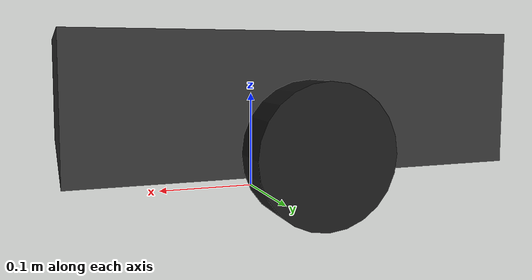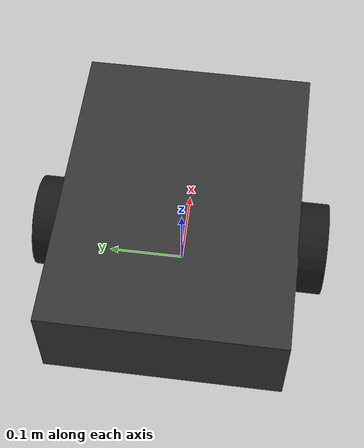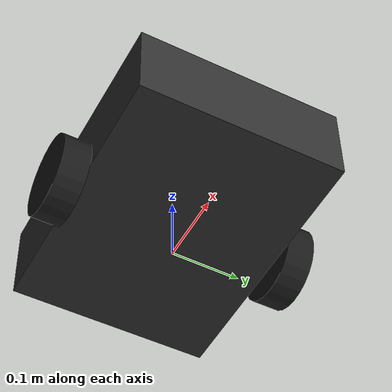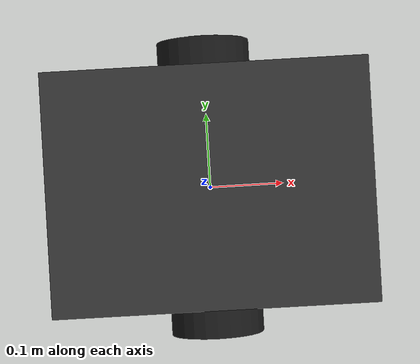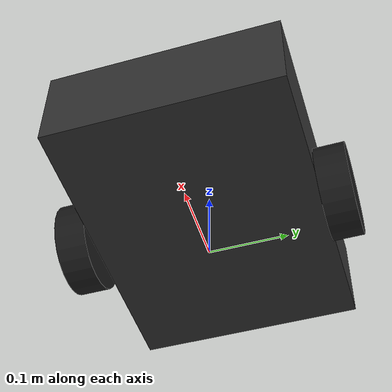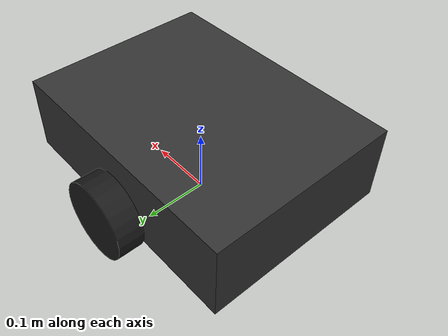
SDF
<?xml version="1.0"?>
<sdf version="1.8">
<model name="crawler">

  <link name="base_link">
    <pose>0 0 0.1 0 0 0</pose>
    <inertial>
      <mass>3.0</mass>
      <inertia><ixx>0.015</ixx><iyy>0.021</iyy><izz>0.032</izz></inertia>
    </inertial>
    <visual name="vis">
      <geometry><box><size>0.4 0.3 0.12</size></box></geometry>
      <material><ambient>0.2 0.2 0.2 1</ambient></material>
    </visual>
    <collision name="col">
      <geometry><box><size>0.4 0.3 0.12</size></box></geometry>
    </collision>

    <!-- LiDAR sensor -->
    <sensor name="lidar" type="gpu_lidar">
      <pose>0.1 0 0.09 0 0 0</pose>
      <update_rate>10</update_rate>
      <lidar>
        <scan>
          <horizontal>
            <samples>360</samples>
            <min_angle>-3.14159</min_angle>
            <max_angle>3.14159</max_angle>
          </horizontal>
        </scan>
        <range>
          <min>0.15</min>
          <max>12.0</max>
        </range>
      </lidar>
      <always_on>true</always_on>
      <topic>scan</topic>
    </sensor>
  </link>
  <!-- Left Wheel -->
  <link name="left_wheel">
    <pose>0 0.17 0.06 -1.5708 0 0</pose>
    <inertial>
      <mass>0.4</mass>
      <inertia><ixx>0.001</ixx><iyy>0.001</iyy><izz>0.001</izz></inertia>
    </inertial>
    <visual name="vis">
      <geometry><cylinder><radius>0.06</radius><length>0.04</length></cylinder></geometry>
      <material><ambient>0.1 0.1 0.1 1</ambient></material>
    </visual>
    <collision name="col">
      <geometry><cylinder><radius>0.06</radius><length>0.04</length></cylinder></geometry>
    </collision>
  </link>

  <joint name="left_wheel_joint" type="revolute">
    <parent>base_link</parent>
    <child>left_wheel</child>
    <axis><xyz>0 0 1</xyz><limit><lower>-1e16</lower><upper>1e16</upper></limit></axis>
  </joint>

  <!-- Right wheel -->
  <link name="right_wheel">
    <pose>0 -0.17 0.06 -1.5708 0 0</pose>
    <inertial>
      <mass>0.4</mass>
      <inertia><ixx>0.001</ixx><iyy>0.001</iyy><izz>0.001</izz></inertia>
    </inertial>
    <visual name="vis">
      <geometry><cylinder><radius>0.06</radius><length>0.04</length></cylinder></geometry>
      <material><ambient>0.1 0.1 0.1 1</ambient></material>
    </visual>
    <collision name="col">
      <geometry><cylinder><radius>0.06</radius><length>0.04</length></cylinder></geometry>
    </collision>
  </link>

  <joint name="right_wheel_joint" type="revolute">
    <parent>base_link</parent>
    <child>right_wheel</child>
    <axis><xyz>0 0 1</xyz><limit><lower>-1e16</lower><upper>1e16</upper></limit></axis>
  </joint>

  <!-- Diff Drive Plugin — Gazebo Harmonic -->
  <plugin filename="gz-sim-diff-drive-system"
          name="gz::sim::systems::DiffDrive">
    <left_joint>left_wheel_joint</left_joint>
    <right_joint>right_wheel_joint</right_joint>
    <wheel_separation>0.34</wheel_separation>
    <wheel_radius>0.06</wheel_radius>
    <topic>cmd_vel</topic>
    <odom_topic>odom</odom_topic>
    <frame_id>odom</frame_id>
    <child_frame_id>base_link</child_frame_id>
  </plugin>

  <!-- Sensors Plugin -->
  <plugin filename="gz-sim-sensors-system"
          name="gz::sim::systems::Sensors">
    <render_engine>ogre2</render_engine>
  </plugin>

</model>
</sdf>
